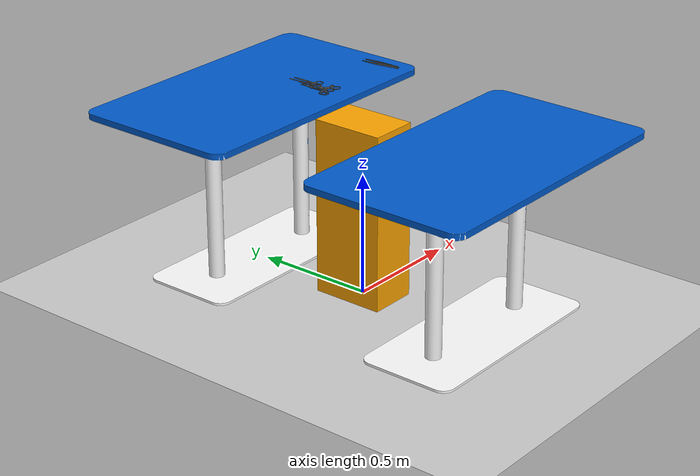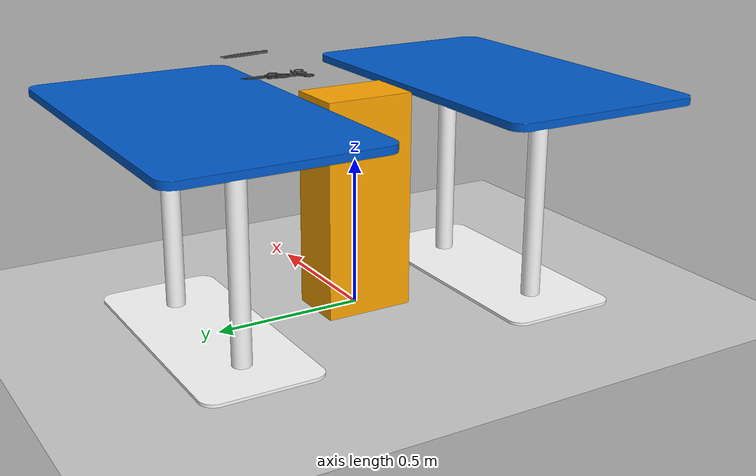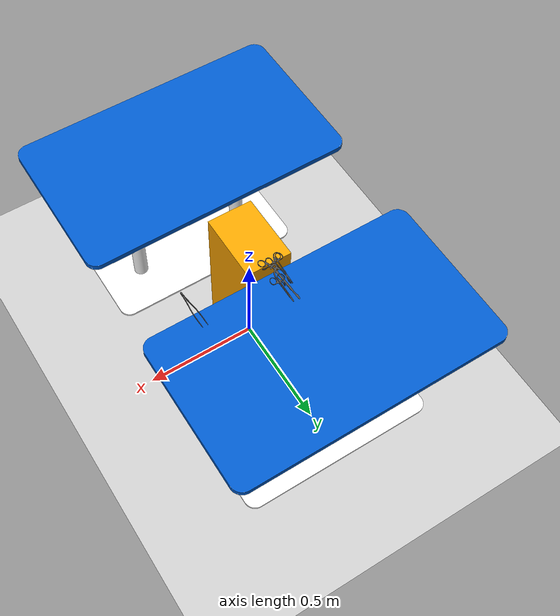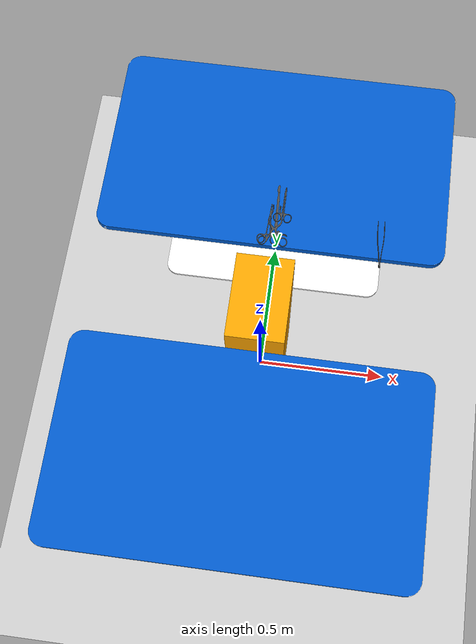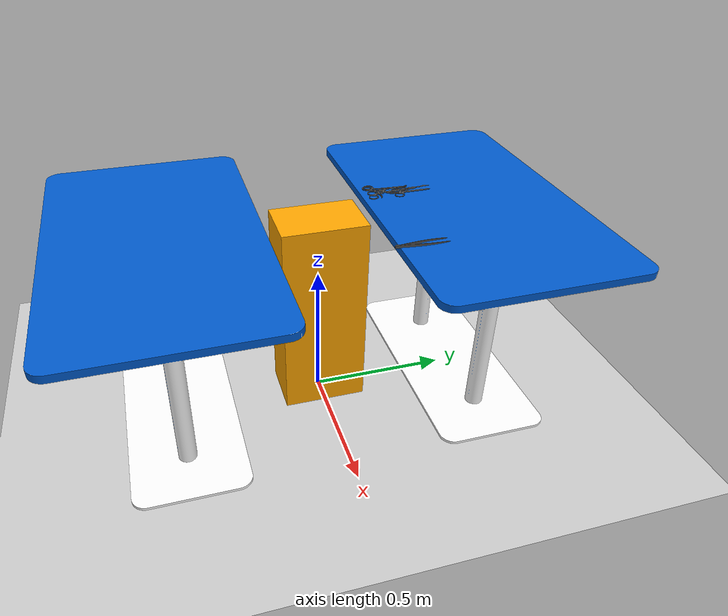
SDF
<?xml version="1.0" ?>
<!-- |    This document was autogenerated by xacro from panda_description/worlds/old_test.world.xacro | -->
<!-- |    EDITING THIS FILE BY HAND IS NOT RECOMMENDED                                 | -->
<sdf version="1.9">
  <world name="test_world">
    <gravity>0 0 -9.8</gravity>
    <magnetic_field>6e-06 2.3e-05 -4.2e-05</magnetic_field>
    <atmosphere type="adiabatic"/>
    <physics type="ode">
      <max_step_size>0.001</max_step_size>
      <real_time_factor>1</real_time_factor>
      <real_time_update_rate>1000</real_time_update_rate>
    </physics>
    <scene>
      <ambient>0.4 0.4 0.4 1</ambient>
      <background>0.7 0.7 0.7 1</background>
      <shadows>true</shadows>
    </scene>
    <!-- ================= PEDESTAL ================= -->
    <model name="Pedestal_001">
      <static>true</static>
      <pose>0 0 0 0 0 0</pose>
      <self_collide>false</self_collide>
      <link name="link">
        <pose>0 0 0.3625 0 0 1.57079632675</pose>
        <collision name="collision">
          <pose>0 0 0 0 0 0</pose>
          <geometry>
            <box>
              <size>0.3 0.2 0.725</size>
            </box>
          </geometry>
          <surface>
            <contact>
              <ode>
                <max_vel>0.01</max_vel>
              </ode>
            </contact>
          </surface>
        </collision>
        <visual name="visual">
          <geometry>
            <box>
              <size>0.3 0.2 0.725</size>
            </box>
          </geometry>
          <material>
            <ambient>1 0.651 0 1</ambient>
            <diffuse>1 0.651 0 1</diffuse>
            <specular>0.1 0.1 0.1 1</specular>
            <emissive>0 0 0 0</emissive>
          </material>
          <meta>
            <layer>1</layer>
          </meta>
        </visual>
      </link>
      <static>true</static>
    </model>
    <!-- ================= REGULAR TABLE 1 ================= -->
    <model name="RegularTable001_01">
      <static>true</static>
      <pose>0 0.54 0 0 0 0</pose>
      <self_collide>false</self_collide>
      <link name="link">
        <collision name="collision">
          <!-- Shift collision box up to match visual's origin (height/2) -->
          <pose>0 0 0.3625 0 0 0</pose>
          <geometry>
            <box>
              <size>1.2 0.7 0.725</size>
            </box>
          </geometry>
          <surface>
            <contact>
              <ode>
                <max_vel>0.01</max_vel>
              </ode>
            </contact>
          </surface>
        </collision>
        <visual name="visual">
          <geometry>
            <mesh>
              <uri>model://thesis/DAE/RegularTable001.dae</uri>
            </mesh>
          </geometry>
          <meta>
            <layer>1</layer>
          </meta>
        </visual>
      </link>
      <static>true</static>
    </model>
    <!-- ================= REGULAR TABLE 2 ================= -->
    <model name="RegularTable001_02">
      <static>true</static>
      <pose>0 -0.54 0 0 0 0</pose>
      <self_collide>false</self_collide>
      <link name="link">
        <collision name="collision">
          <pose>0 0 0.3625 0 0 0</pose>
          <geometry>
            <box>
              <size>1.2 0.7 0.725</size>
            </box>
          </geometry>
          <surface>
            <contact>
              <ode>
                <max_vel>0.01</max_vel>
              </ode>
            </contact>
          </surface>
        </collision>
        <visual name="visual">
          <geometry>
            <mesh>
              <uri>model://thesis/DAE/RegularTable001.dae</uri>
            </mesh>
          </geometry>
          <meta>
            <layer>1</layer>
          </meta>
        </visual>
      </link>
      <static>true</static>
    </model>
    <!-- ================= NEEDLE HOLDER 1 ================= -->
    <model name="NeedleHolder_001">
      <pose>0 0.214 0.8 0 0 0</pose>
      <static>false</static>
      <self_collide>false</self_collide>
      <link name="link">
        <inertial>
          <mass>0.02683</mass>
          <inertia>
            <ixx>4.00372e-05</ixx>
            <ixy>6.58e-08</ixy>
            <ixz>5e-10</ixz>
            <iyy>6.2838e-06</iyy>
            <iyz>1.6e-09</iyz>
            <izz>4.62854e-05</izz>
          </inertia>
        </inertial>
        <collision name="collision">
          <geometry>
            <mesh>
              <uri>model://thesis/DAE/NeedleHolder/NeedleHolderCollision.dae</uri>
              <scale>1 1 1</scale>
            </mesh>
          </geometry>
          <surface>
            <contact>
              <ode>
                <max_vel>0.01</max_vel>
              </ode>
            </contact>
          </surface>
        </collision>
        <visual name="visual">
          <geometry>
            <mesh>
              <uri>model://thesis/DAE/NeedleHolder/NeedleHolder.dae</uri>
            </mesh>
          </geometry>
          <meta>
            <layer>1</layer>
          </meta>
        </visual>
      </link>
    </model>
    <!-- ================= RETRACTOR 1 ================= -->
    <model name="Retractor_001">
      <pose>0.02 0.214 0.8 0 0 0</pose>
      <self_collide>false</self_collide>
      <static>false</static>
      <link name="link">
        <inertial>
          <mass>0.04748</mass>
          <inertia>
            <ixx>6.43596e-05</ixx>
            <ixy>1.8596e-06</ixy>
            <ixz>-5.092e-07</ixz>
            <iyy>2.23688e-05</iyy>
            <iyz>2.668e-07</iyz>
            <izz>8.65929e-05</izz>
          </inertia>
        </inertial>
        <collision name="collision">
          <geometry>
            <mesh>
              <uri>model://thesis/DAE/Retractor/RetractorCollision.dae</uri>
              <scale>1 1 1</scale>
            </mesh>
          </geometry>
          <surface>
            <contact>
              <ode>
                <max_vel>0.01</max_vel>
              </ode>
            </contact>
          </surface>
        </collision>
        <visual name="visual">
          <geometry>
            <mesh>
              <uri>model://thesis/DAE/Retractor/Retractor.dae</uri>
            </mesh>
          </geometry>
          <meta>
            <layer>1</layer>
          </meta>
        </visual>
      </link>
    </model>
    <!-- ================= SCALPEL 1 ================= -->
    <model name="Scalpel_001">
      <pose>0.02 0.294 0.8 0 0 0</pose>
      <self_collide>false</self_collide>
      <static>false</static>
      <link name="link">
        <inertial>
          <mass>0.01688</mass>
          <inertia>
            <ixx>2.02809e-05</ixx>
            <ixy>8.633e-07</ixy>
            <ixz>1.75e-08</ixz>
            <iyy>1.375e-07</iyy>
            <iyz>-4.026e-07</iyz>
            <izz>2.03822e-05</izz>
          </inertia>
        </inertial>
        <collision name="collision">
          <geometry>
            <mesh>
              <uri>model://thesis/DAE/Scalpel/ScalpelCollision.dae</uri>
              <scale>1 1 1</scale>
            </mesh>
          </geometry>
          <surface>
            <contact>
              <ode>
                <max_vel>0.01</max_vel>
              </ode>
            </contact>
          </surface>
        </collision>
        <visual name="visual">
          <geometry>
            <mesh>
              <uri>model://thesis/DAE/Scalpel/Scalpel.dae</uri>
            </mesh>
          </geometry>
          <meta>
            <layer>1</layer>
          </meta>
        </visual>
      </link>
    </model>
    <!-- ================= SCISSORS ================= -->
    <model name="Scissors_001">
      <pose>0.04 0.294 0.8 0 0 0</pose>
      <self_collide>false</self_collide>
      <static>false</static>
      <link name="link">
        <inertial>
          <mass>0.0256</mass>
          <inertia>
            <ixx>3.10629e-05</ixx>
            <ixy>-1.477e-07</ixy>
            <ixz>-5e-10</ixz>
            <iyy>3.4702e-06</iyy>
            <iyz>-1.029e-07</iyz>
            <izz>3.45011e-05</izz>
          </inertia>
        </inertial>
        <collision name="collision">
          <geometry>
            <mesh>
              <uri>model://thesis/DAE/Scissors/ScissorsCollision.dae</uri>
              <scale>1 1 1</scale>
            </mesh>
          </geometry>
          <surface>
            <contact>
              <ode>
                <max_vel>0.01</max_vel>
              </ode>
            </contact>
          </surface>
        </collision>
        <visual name="visual">
          <geometry>
            <mesh>
              <uri>model://thesis/DAE/Scissors/Scissors.dae</uri>
            </mesh>
          </geometry>
          <meta>
            <layer>1</layer>
          </meta>
        </visual>
      </link>
    </model>
    <!-- ================= TWEEZERS 1 ================= -->
    <model name="Tweezers_001">
      <pose>0.374 0.194 0.8 0 0 0</pose>
      <self_collide>false</self_collide>
      <static>false</static>
      <link name="link">
        <inertial>
          <mass>0.03366</mass>
          <inertia>
            <ixx>6.93277e-05</ixx>
            <ixy>2.3808e-06</ixy>
            <ixz>-5.07e-08</ixz>
            <iyy>2.1973e-06</iyy>
            <iyz>1.4302e-06</iyz>
            <izz>7.11197e-05</izz>
          </inertia>
        </inertial>
        <collision name="collision">
          <geometry>
            <mesh>
              <uri>model://thesis/DAE/Tweezers/TweezersCollision.dae</uri>
              <scale>1 1 1</scale>
            </mesh>
          </geometry>
          <surface>
            <contact>
              <ode>
                <max_vel>0.01</max_vel>
              </ode>
            </contact>
          </surface>
        </collision>
        <visual name="visual">
          <geometry>
            <mesh>
              <uri>model://thesis/DAE/Tweezers/Tweezers.dae</uri>
            </mesh>
          </geometry>
          <meta>
            <layer>1</layer>
          </meta>
        </visual>
      </link>
    </model>
    <!-- ================= GROUND PLANE ================= -->
    <model name="ground_plane">
      <static>true</static>
      <link name="link">
        <collision name="collision">
          <geometry>
            <plane>
              <normal>0 0 1</normal>
              <size>1 1</size>
            </plane>
          </geometry>
          <surface>
            <friction>
              <ode/>
            </friction>
            <bounce/>
            <contact/>
          </surface>
        </collision>
        <visual name="visual">
          <geometry>
            <plane>
              <normal>0 0 1</normal>
              <size>100 100</size>
            </plane>
          </geometry>
          <material>
            <ambient>0.8 0.8 0.8 1</ambient>
            <diffuse>0.8 0.8 0.8 1</diffuse>
            <specular>0.8 0.8 0.8 1</specular>
          </material>
        </visual>
        <pose>0 0 0 0 -0 0</pose>
        <inertial>
          <pose>0 0 0 0 -0 0</pose>
          <mass>1</mass>
          <inertia>
            <ixx>1</ixx>
            <ixy>0</ixy>
            <ixz>0</ixz>
            <iyy>1</iyy>
            <iyz>0</iyz>
            <izz>1</izz>
          </inertia>
        </inertial>
        <enable_wind>false</enable_wind>
      </link>
      <pose>0 0 0 0 -0 0</pose>
      <self_collide>false</self_collide>
    </model>
    <light name="sun" type="directional">
      <pose>0 0 10 0 -0 0</pose>
      <cast_shadows>true</cast_shadows>
      <intensity>1</intensity>
      <direction>-0.5 0.1 -0.9</direction>
      <diffuse>0.8 0.8 0.8 1</diffuse>
      <specular>0.2 0.2 0.2 1</specular>
      <attenuation>
        <range>1000</range>
        <linear>0.01</linear>
        <constant>0.90000000000000002</constant>
        <quadratic>0.001</quadratic>
      </attenuation>
      <spot>
        <inner_angle>0</inner_angle>
        <outer_angle>0</outer_angle>
        <falloff>0</falloff>
      </spot>
    </light>
  </world>
</sdf>
